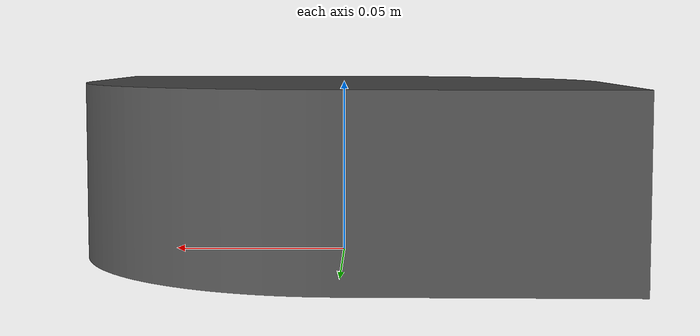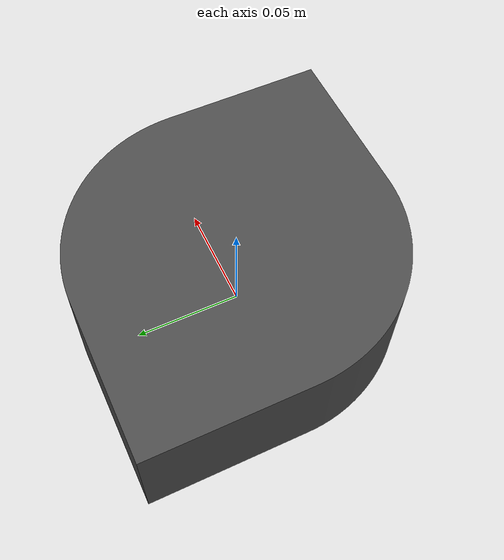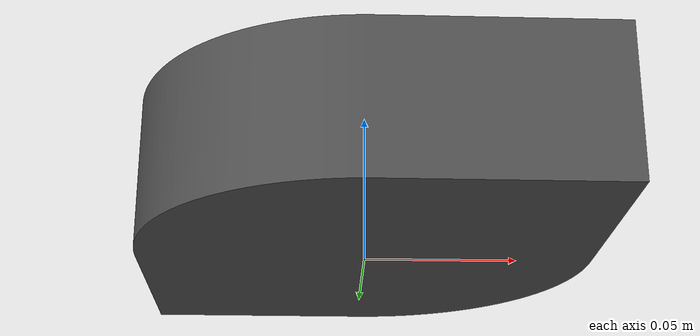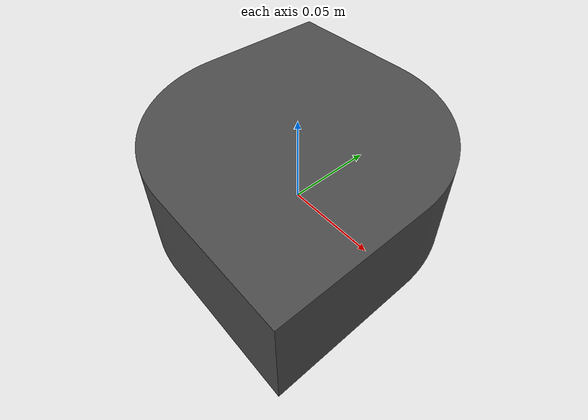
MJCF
<mujoco model="quater_1">
  <compiler angle="radian" />

  <asset>
    <mesh name="quater_1_visual_mesh" file="quater_1/textured.obj" />
    <mesh name="quater_1_collision_mesh" file="quater_1/textured.stl" />
    <material name="gray" rgba="0.3 0.3 0.3 1" />
  </asset>

  <worldbody>
    <body name="quater_1" pos="0 0 0" euler="0 0 0">
      <freejoint name="quater_1_joint" />
      <geom name="quater_1_visual_geom" type="mesh" mesh="quater_1_visual_mesh" material="gray" pos="-0.0 0.0 0.0" euler="0 0 0" contype="0" conaffinity="0" group="0" />
      <geom name="quater_1_collision_geom" type="mesh" mesh="quater_1_collision_mesh" pos="-0.0 0.0 0.0" euler="0 0 0" contype="1" conaffinity="1" group="3" />
      <inertial pos="0 0 0" euler="0 0 0" mass="0.411" diaginertia="0.001 0.001 0.001" />
    </body>
  </worldbody>
</mujoco>
